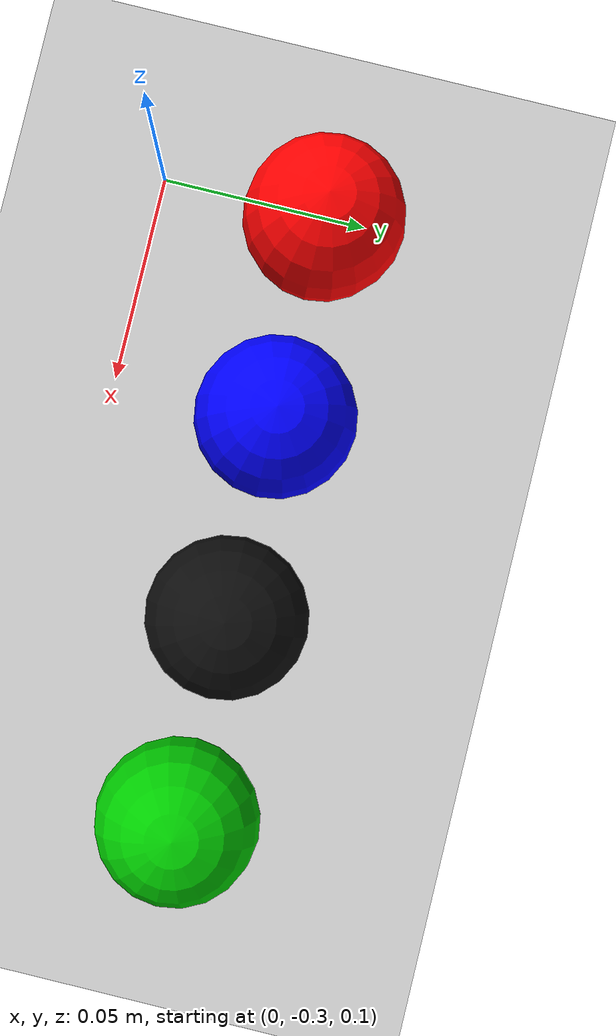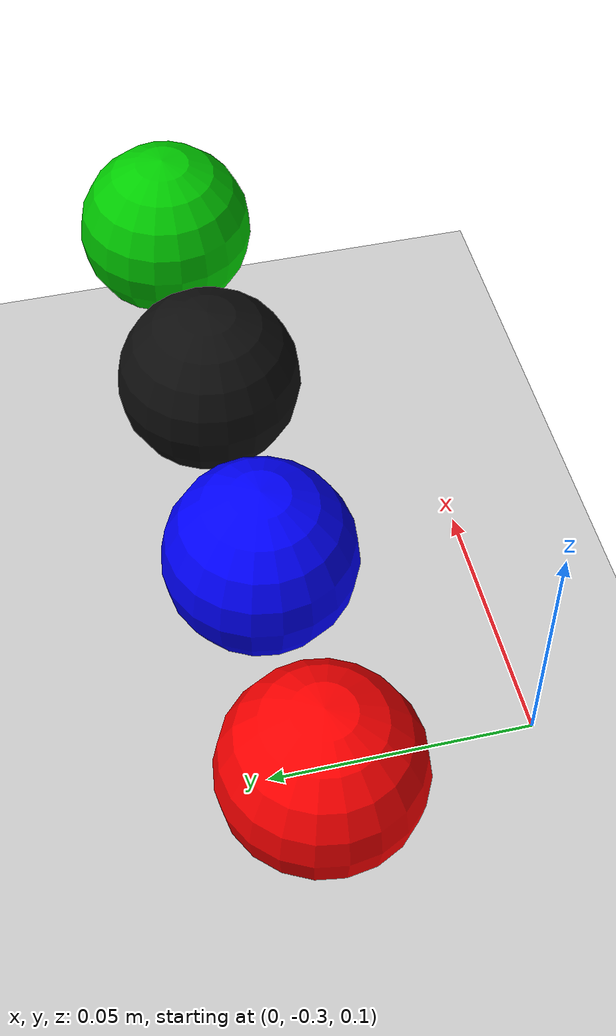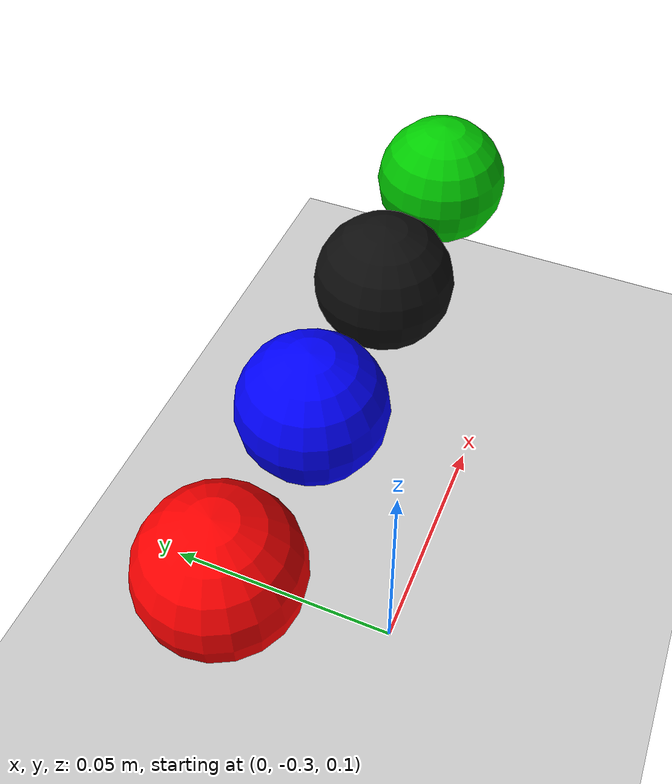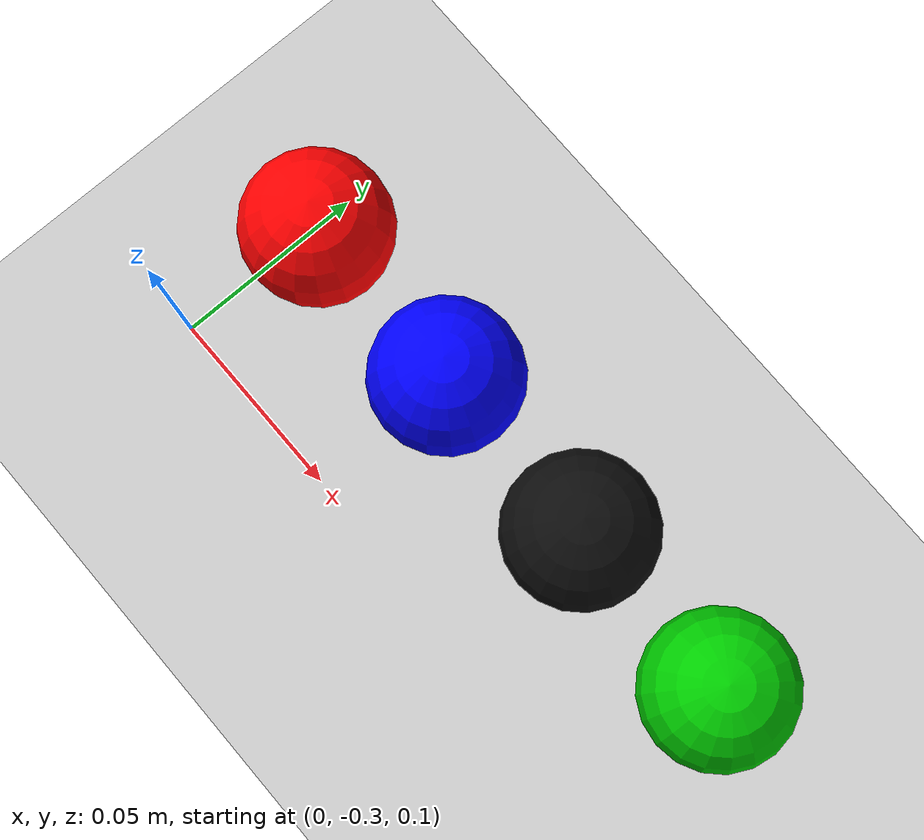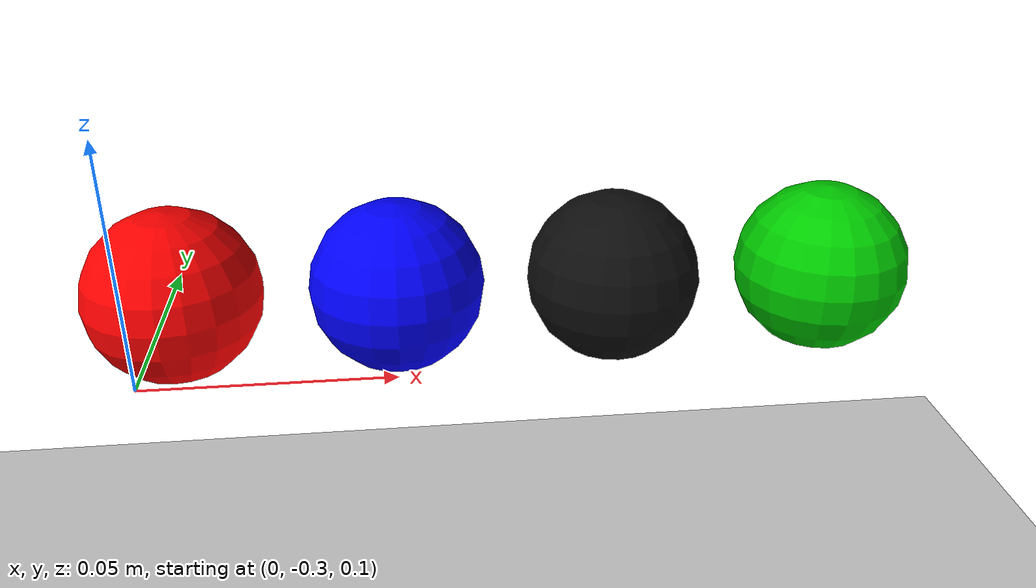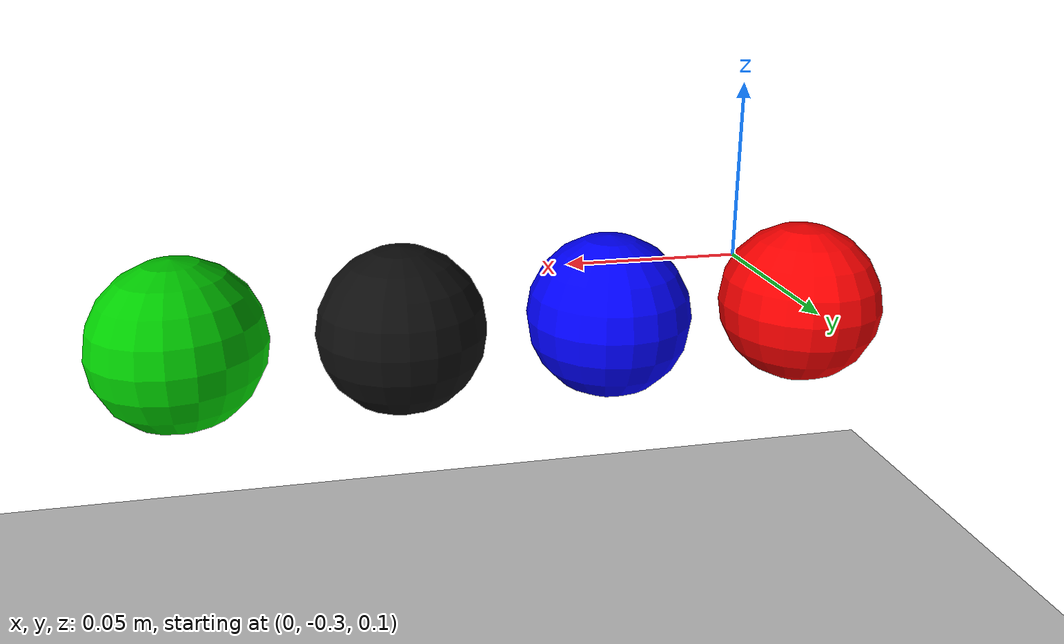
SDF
<?xml version="1.0" ?>
<sdf version="1.6">
  <world name="sorting_world">

    <!-- Physics -->
    <physics name="1ms" type="ignored">
      <max_step_size>0.001</max_step_size>
      <real_time_factor>1.0</real_time_factor>
    </physics>

    <!-- Required plugins -->
    <plugin filename="ignition-gazebo-physics-system"
            name="ignition::gazebo::systems::Physics"/>
    <plugin filename="ignition-gazebo-user-commands-system"
            name="ignition::gazebo::systems::UserCommands"/>
    <plugin filename="ignition-gazebo-scene-broadcaster-system"
            name="ignition::gazebo::systems::SceneBroadcaster"/>
    <plugin filename="ignition-gazebo-contact-system"
            name="ignition::gazebo::systems::Contact"/>

    <!-- Sun -->
    <light name="sun" type="directional">
      <cast_shadows>true</cast_shadows>
      <pose>0 0 10 0 0 0</pose>
      <diffuse>0.8 0.8 0.8 1</diffuse>
      <specular>0.2 0.2 0.2 1</specular>
      <direction>-0.5 0.1 -0.9</direction>
    </light>

    <!-- Ground plane -->
    <model name="ground_plane">
      <static>true</static>
      <link name="link">
        <collision name="collision">
          <geometry>
            <plane>
              <normal>0 0 1</normal>
              <size>20 20</size>
            </plane>
          </geometry>
          <surface>
            <friction>
              <ode><mu>1.0</mu><mu2>1.0</mu2></ode>
            </friction>
          </surface>
        </collision>
        <visual name="visual">
          <geometry>
            <plane>
              <normal>0 0 1</normal>
              <size>20 20</size>
            </plane>
          </geometry>
          <material>
            <ambient>0.8 0.8 0.8 1</ambient>
            <diffuse>0.8 0.8 0.8 1</diffuse>
          </material>
        </visual>
      </link>
    </model>

    <!-- RED BALL (travels to 148-150mm, placed RIGHT) -->
    <model name="red_ball">
      <pose>0.0 -0.26 0.10 0 0 0</pose>
      <link name="link">
        <collision name="collision">
          <geometry>
            <sphere><radius>0.02</radius></sphere>
          </geometry>
          <surface>
            <friction>
              <ode>
                <mu>0.8</mu>
                <mu2>0.8</mu2>
              </ode>
            </friction>
            <contact>
              <ode>
                <kp>1e6</kp>
                <kd>1.0</kd>
              </ode>
            </contact>
          </surface>
        </collision>
        <visual name="visual">
          <geometry>
            <sphere><radius>0.02</radius></sphere>
          </geometry>
          <material>
            <ambient>1 0 0 1</ambient>
            <diffuse>1 0 0 1</diffuse>
            <specular>0.5 0.5 0.5 1</specular>
          </material>
        </visual>
        <inertial>
          <mass>0.05</mass>
          <inertia>
            <ixx>8e-06</ixx>
            <iyy>8e-06</iyy>
            <izz>8e-06</izz>
          </inertia>
        </inertial>
      </link>
    </model>

    <!-- BLUE BALL (travels to 148-150mm, placed LEFT) -->
    <model name="blue_ball">
      <pose>0.05 -0.26 0.10 0 0 0</pose>
      <link name="link">
        <collision name="collision">
          <geometry>
            <sphere><radius>0.02</radius></sphere>
          </geometry>
          <surface>
            <friction>
              <ode>
                <mu>0.8</mu>
                <mu2>0.8</mu2>
              </ode>
            </friction>
            <contact>
              <ode>
                <kp>1e6</kp>
                <kd>1.0</kd>
              </ode>
            </contact>
          </surface>
        </collision>
        <visual name="visual">
          <geometry>
            <sphere><radius>0.02</radius></sphere>
          </geometry>
          <material>
            <ambient>0 0 1 1</ambient>
            <diffuse>0 0 1 1</diffuse>
            <specular>0.5 0.5 0.5 1</specular>
          </material>
        </visual>
        <inertial>
          <mass>0.05</mass>
          <inertia>
            <ixx>8e-06</ixx>
            <iyy>8e-06</iyy>
            <izz>8e-06</izz>
          </inertia>
        </inertial>
      </link>
    </model>

    <!-- BLACK BALL (belt reverses → falls off back) -->
    <model name="black_ball">
      <pose>0.10 -0.26 0.10 0 0 0</pose>
      <link name="link">
        <collision name="collision">
          <geometry>
            <sphere><radius>0.02</radius></sphere>
          </geometry>
          <surface>
            <friction>
              <ode>
                <mu>0.8</mu>
                <mu2>0.8</mu2>
              </ode>
            </friction>
            <contact>
              <ode>
                <kp>1e6</kp>
                <kd>1.0</kd>
              </ode>
            </contact>
          </surface>
        </collision>
        <visual name="visual">
          <geometry>
            <sphere><radius>0.02</radius></sphere>
          </geometry>
          <material>
            <ambient>0.05 0.05 0.05 1</ambient>
            <diffuse>0.05 0.05 0.05 1</diffuse>
            <specular>0.3 0.3 0.3 1</specular>
          </material>
        </visual>
        <inertial>
          <mass>0.05</mass>
          <inertia>
            <ixx>8e-06</ixx>
            <iyy>8e-06</iyy>
            <izz>8e-06</izz>
          </inertia>
        </inertial>
      </link>
    </model>

    <!-- GREEN BALL (belt forward → overshoots front) -->
    <model name="green_ball">
      <pose>0.15 -0.26 0.10 0 0 0</pose>
      <link name="link">
        <collision name="collision">
          <geometry>
            <sphere><radius>0.02</radius></sphere>
          </geometry>
          <surface>
            <friction>
              <ode>
                <mu>0.8</mu>
                <mu2>0.8</mu2>
              </ode>
            </friction>
            <contact>
              <ode>
                <kp>1e6</kp>
                <kd>1.0</kd>
              </ode>
            </contact>
          </surface>
        </collision>
        <visual name="visual">
          <geometry>
            <sphere><radius>0.02</radius></sphere>
          </geometry>
          <material>
            <ambient>0 0.8 0 1</ambient>
            <diffuse>0 0.8 0 1</diffuse>
            <specular>0.5 0.5 0.5 1</specular>
          </material>
        </visual>
        <inertial>
          <mass>0.05</mass>
          <inertia>
            <ixx>8e-06</ixx>
            <iyy>8e-06</iyy>
            <izz>8e-06</izz>
          </inertia>
        </inertial>
      </link>
    </model>

  </world>
</sdf>
